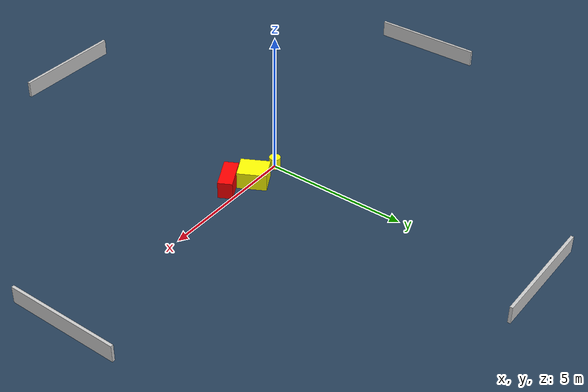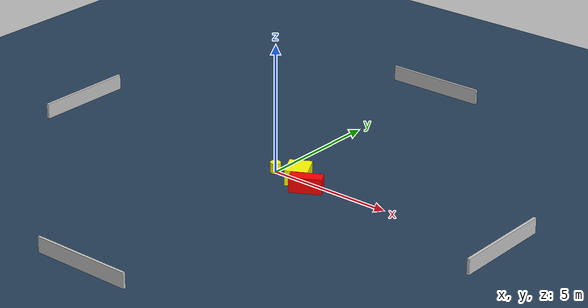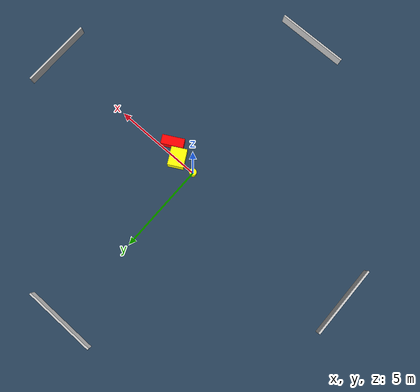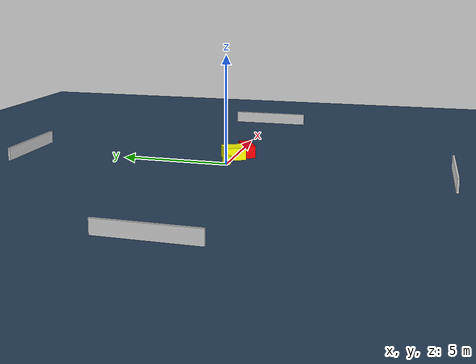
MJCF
<?xml version="1.0" ?>
<mujoco model="generated_environment">
  <option timestep="0.01" integrator="RK4" cone="elliptic"/>
  <default>
    <geom density="1"/>
  </default>
  <asset>
    <texture builtin="gradient" height="3072" name="skybox" rgb1="0.3 0.5 0.7" rgb2="0 0 0" type="skybox" width="512"/>
    <texture builtin="checker" height="300" name="groundplane" rgb1="0.2 0.3 0.4" rgb2="0.1 0.2 0.3" type="2d" width="300"/>
    <material name="groundplane" reflectance="0.2" texrepeat="5 5" texture="groundplane"/>
  </asset>
  <worldbody>
    <light dir="0 0 -1" directional="true" pos="0 0 1.5"/>
    <geom condim="3" friction="0.5 0.005 0.001" material="groundplane" name="floor" pos="0 0 0" size="0 0 0.05" type="plane"/>
    <body name="walls">
      <geom name="wall_1" condim="4" pos="-10.0 0.0 0.3" rgba="0.800000011920929 0.800000011920929 0.800000011920929 1.0" size="0.05 2.0 0.3" type="box"/>
      <geom name="wall_2" condim="4" pos="10.0 0.0 0.3" rgba="0.800000011920929 0.800000011920929 0.800000011920929 1.0" size="0.05 2.0 0.3" type="box"/>
      <geom name="wall_3" condim="4" pos="0.0 -10.0 0.3" rgba="0.800000011920929 0.800000011920929 0.800000011920929 1.0" size="2.0 0.05 0.3" type="box"/>
      <geom name="wall_4" condim="4" pos="0.0 10.0 0.3" rgba="0.800000011920929 0.800000011920929 0.800000011920929 1.0" size="2.0 0.05 0.3" type="box"/>
    </body>
    <body name="robot">
      <joint name="joint_x" type="slide" pos="0 0 0" axis="1 0 0"/>
      <joint name="joint_y" type="slide" pos="0 0 0" axis="0 1 0"/>
      <geom name="robot" type="cylinder" pos="0.0 0.0 0.2" size="0.2 0.2 0.0" mass="5.0" friction="1.0 0.005 0.0001" condim="4" rgba="1.0 1.0 0.0 1.0"/>
    </body>
    <body name="obstacle_1_movable">
      <geom name="obstacle_1_movable" condim="4" pos="1.124378613369579 -0.03823400028429674 0.3" euler="0 0 298.6090135237056" friction="0.0 0.005 0.001" rgba="1.0 1.0 0.0 1.0" size="0.5069654909827761 0.4321712446432323 0.3" type="box" mass="0.1"/>
      <joint type="free"/>
    </body>
    <body name="obstacle_2_static">
      <geom name="obstacle_2_static" condim="4" pos="1.8772854893471511 -0.5157596507677396 0.3" euler="0 0 208.5219503316032" friction="0.0 0.005 0.001" rgba="1.0 0.0 0.0 1.0" size="0.6133947584886936 0.25208008497423817 0.3" type="box"/>
    </body>
  </worldbody>
  <actuator>
    <motor name="actuator_x" joint="joint_x" gear="1" ctrlrange="-1 1"/>
    <motor name="actuator_y" joint="joint_y" gear="1" ctrlrange="-1 1"/>
  </actuator>
</mujoco>
